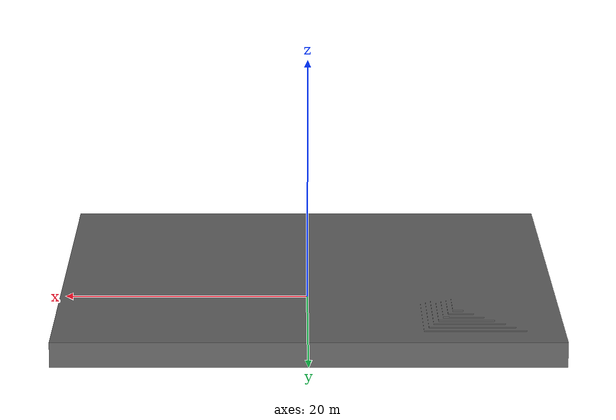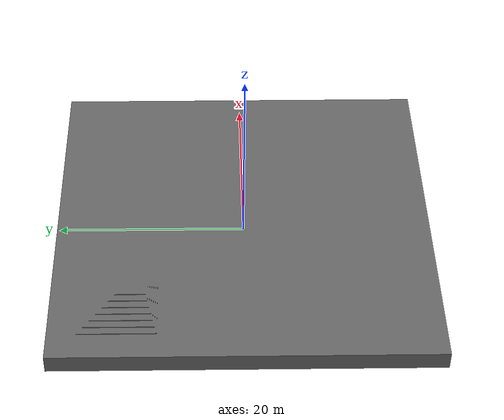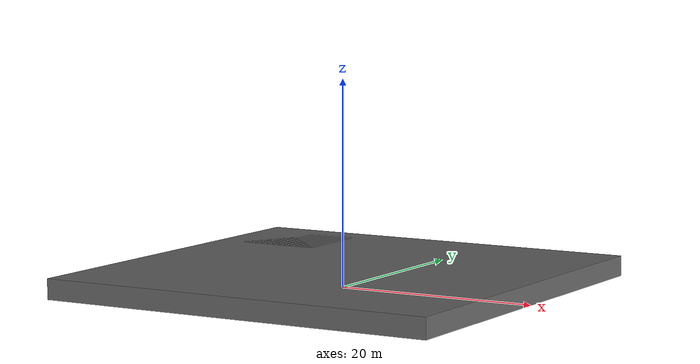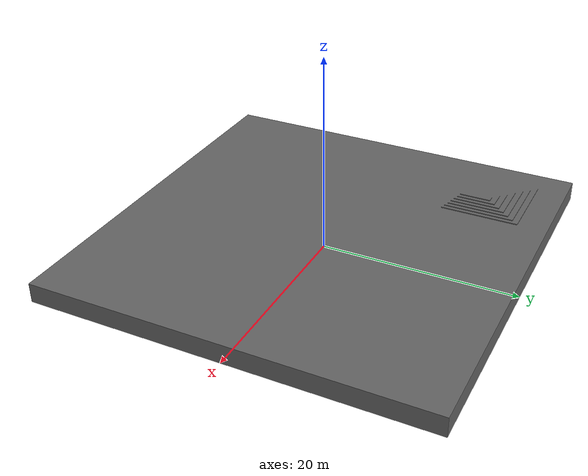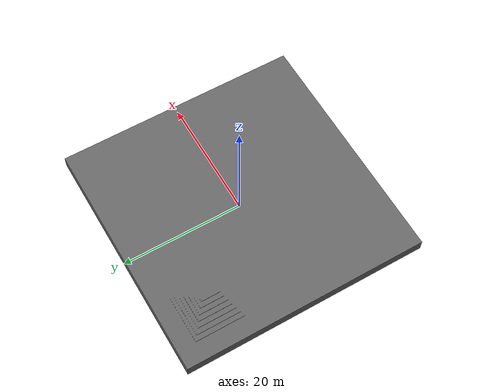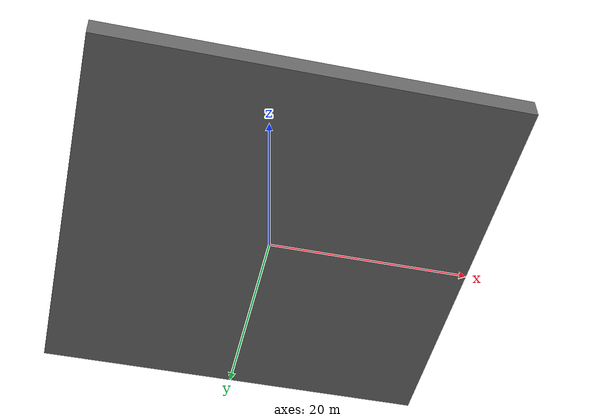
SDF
<?xml version="1.0" ?>
<sdf version="1.6">
  <model name="obstacles_stage">
    <static>true</static>
    <link name="link">
      <collision name="collision">
        <geometry>
          <mesh>
            <scale>1 1 1</scale>
            <uri>model://obstacles_stage/meshes/spot_stage.stl</uri>
          </mesh>
        </geometry>
        <surface>
          <friction>
            <ode>
              <mu>1.2</mu>
              <mu2>1.2</mu2>
            </ode>
          </friction>
          <contact>
            <ode>
              <kp>100000</kp>
              <kd>1</kd>
              <max_vel>0.01</max_vel>
              <minDepth>0</minDepth>
              <contact_surface_layer>0</contact_surface_layer>
            </ode>
          </contact>
        </surface>
      </collision>
      <sensor name='sensor_contact' type='contact'>
        <contact>
          <collision>collision</collision>
        </contact>
      </sensor>
      <visual name="visual">
        <geometry>
          <mesh>
            <scale>1 1 1</scale>
            <uri>model://obstacles_stage/meshes/spot_stage.dae</uri>
          </mesh>
        </geometry>
      </visual>
    </link>
    <plugin filename="gz-sim-touchplugin-system"
            name="gz::sim::systems::TouchPlugin">
        <target>front_left_shin_link</target>
        <namespace>front_left_shin_link</namespace>
        <time>0.001</time>
        <enabled>true</enabled>
    </plugin>
  </model>
</sdf>
